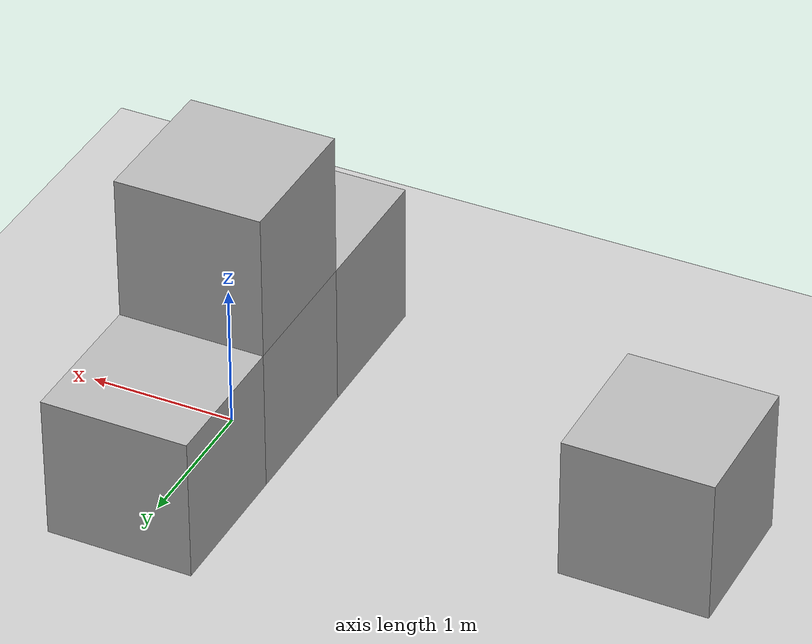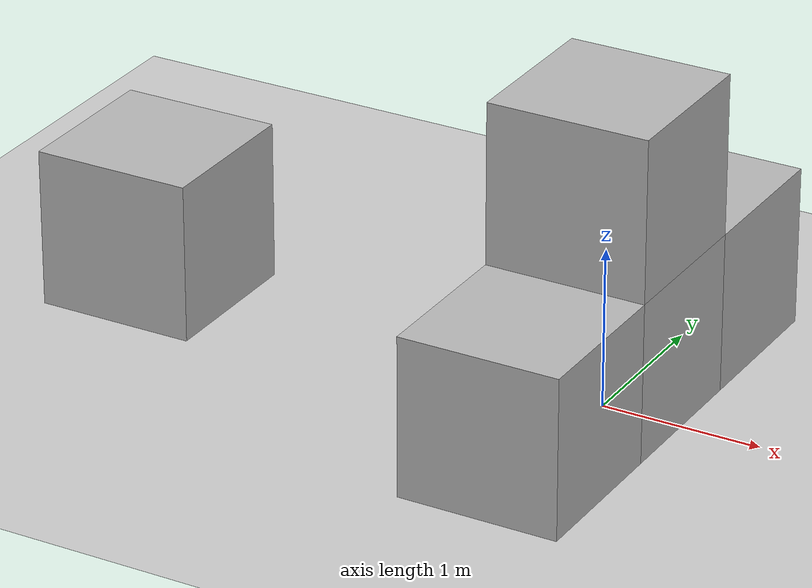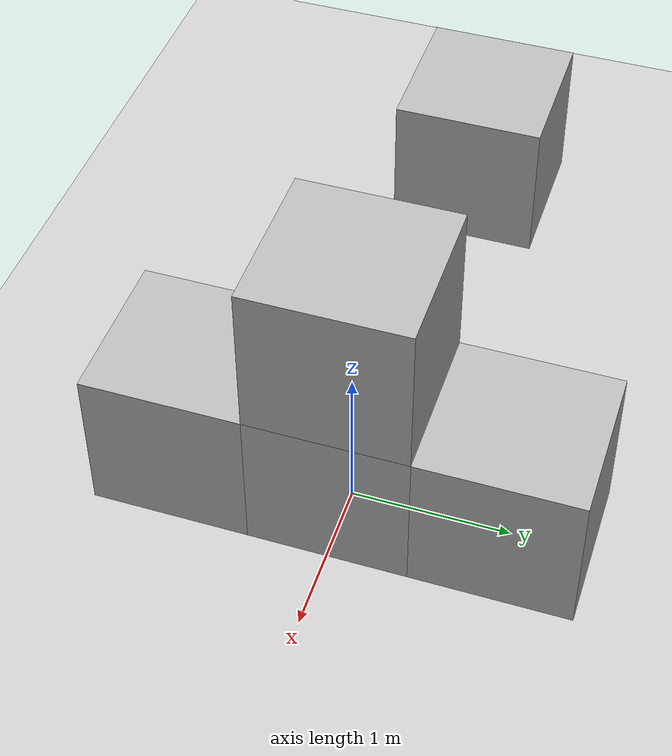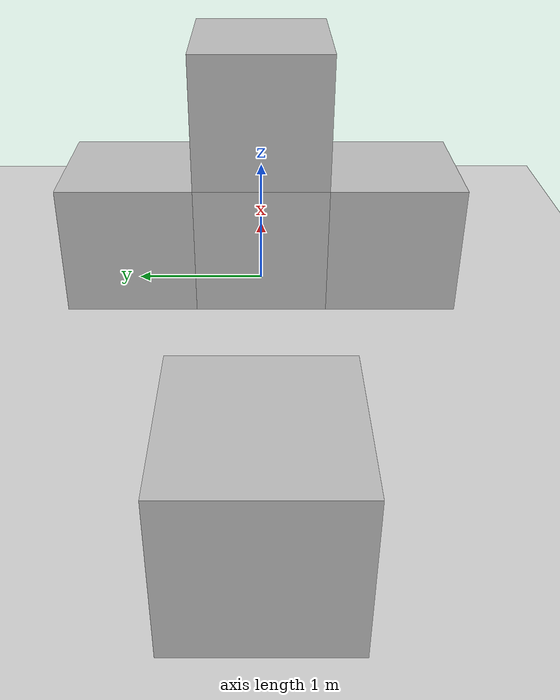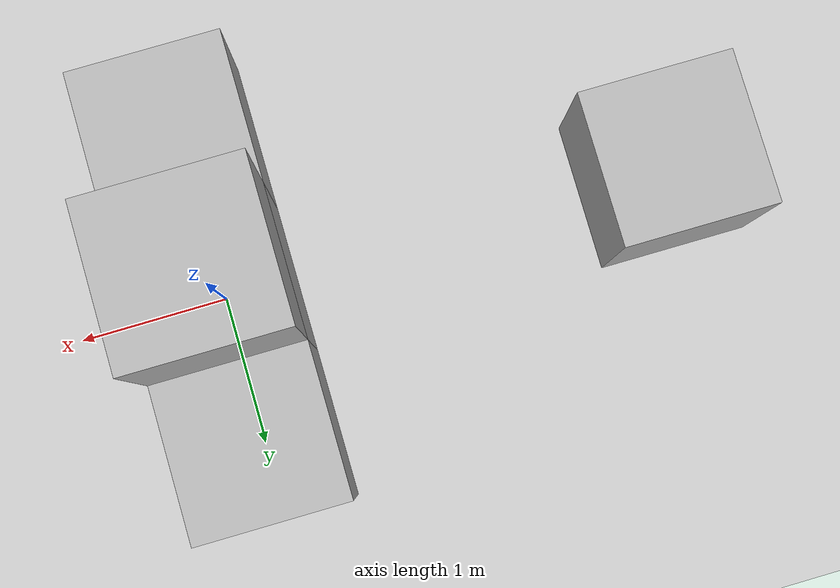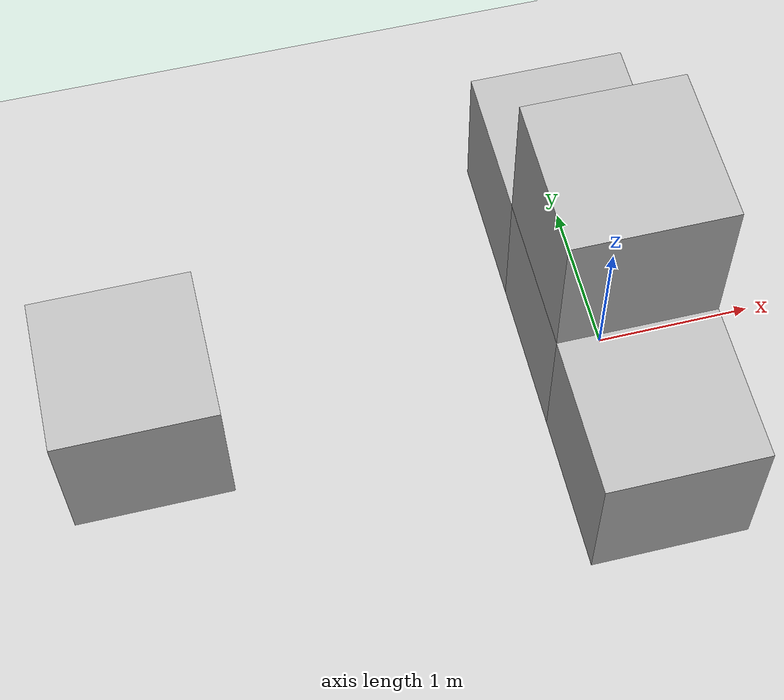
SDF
<?xml version="1.0" ?>
<sdf version="1.3">
  <world name="default">
    <include><uri>model://ground_plane</uri></include>
    <include><uri>model://sun</uri></include>

    <model name="rotated_box">
      <pose>-3 0 0.5 -1.5708 0 0</pose>
      <link name="link">
        <collision name="collision">
          <geometry>
            <box>
              <size>1 1 1</size>
            </box>
          </geometry>
        </collision>

        <visual name="visual">
          <geometry>
            <box>
              <size>1 1 1</size>
            </box>
          </geometry>
        </visual>

        <sensor name="cam1" type="camera">
          <pose>0 0 0  1.5708 0 0</pose>
          <update_rate>15</update_rate>
          <camera name="left">
            <pose>0 0 0  0 0 0</pose>
            <horizontal_fov>1.3962634</horizontal_fov>
            <image>
              <width>1024</width>
              <height>544</height>
              <format>R8G8B8</format>
            </image>
            <clip>
              <near>0.02</near>
              <far>100</far>
            </clip>
          </camera>
        </sensor>
        <sensor name="cam2" type="camera">
          <pose>0 0 0  0.7854 0 0</pose>
          <update_rate>15</update_rate>
          <camera name="left">
            <pose>0 0 0  0.7854 0 0</pose>
            <horizontal_fov>1.3962634</horizontal_fov>
            <image>
              <width>1024</width>
              <height>544</height>
              <format>R8G8B8</format>
            </image>
            <clip>
              <near>0.02</near>
              <far>100</far>
            </clip>
          </camera>
        </sensor>
        <sensor name="cam3" type="camera">
          <pose>0 0 0  0 0 0</pose>
          <update_rate>15</update_rate>
          <camera name="left">
            <pose>0 0 0  1.5708 0 0</pose>
            <horizontal_fov>1.3962634</horizontal_fov>
            <image>
              <width>1024</width>
              <height>544</height>
              <format>R8G8B8</format>
            </image>
            <clip>
              <near>0.02</near>
              <far>100</far>
            </clip>
          </camera>
        </sensor>
        <sensor name="mcam1" type="multicamera">
          <update_rate>15</update_rate>
          <pose>0 0 0  1.5708 0 0</pose>
          <camera name="left">
            <horizontal_fov>1.3962634</horizontal_fov>
            <image>
              <width>1024</width>
              <height>544</height>
              <format>R8G8B8</format>
            </image>
            <clip>
              <near>0.02</near>
              <far>100</far>
            </clip>
          </camera>
          <camera name="right">
            <pose>0 -1.0 0  0 0 0</pose>
            <horizontal_fov>1.3962634</horizontal_fov>
            <image>
              <width>1024</width>
              <height>544</height>
              <format>R8G8B8</format>
            </image>
            <clip>
              <near>0.02</near>
              <far>100</far>
            </clip>
          </camera>
        </sensor>
      </link>
    </model>

    <model name="box1">
      <pose>0 0 0.5 0 0 0</pose>
      <link name="link">
        <collision name="collision">
          <geometry>
            <box>
              <size>1 1 1</size>
            </box>
          </geometry>
        </collision>
        <visual name="visual">
          <geometry>
            <box>
              <size>1 1 1</size>
            </box>
          </geometry>
        </visual>
      </link>
    </model>
    <model name="box2">
      <pose>0 1 0.5 0 0 0</pose>
      <link name="link">
        <collision name="collision">
          <geometry>
            <box>
              <size>1 1 1</size>
            </box>
          </geometry>
        </collision>
        <visual name="visual">
          <geometry>
            <box>
              <size>1 1 1</size>
            </box>
          </geometry>
        </visual>
      </link>
    </model>
    <model name="box3">
      <pose>0 -1 0.5 0 0 0</pose>
      <link name="link">
        <collision name="collision">
          <geometry>
            <box>
              <size>1 1 1</size>
            </box>
          </geometry>
        </collision>
        <visual name="visual">
          <geometry>
            <box>
              <size>1 1 1</size>
            </box>
          </geometry>
        </visual>
      </link>
    </model>
    <model name="box4">
      <pose>0 0 1.5 0 0 0</pose>
      <link name="link">
        <collision name="collision">
          <geometry>
            <box>
              <size>1 1 1</size>
            </box>
          </geometry>
        </collision>
        <visual name="visual">
          <geometry>
            <box>
              <size>1 1 1</size>
            </box>
          </geometry>
        </visual>
      </link>
    </model>

  </world>
</sdf>
